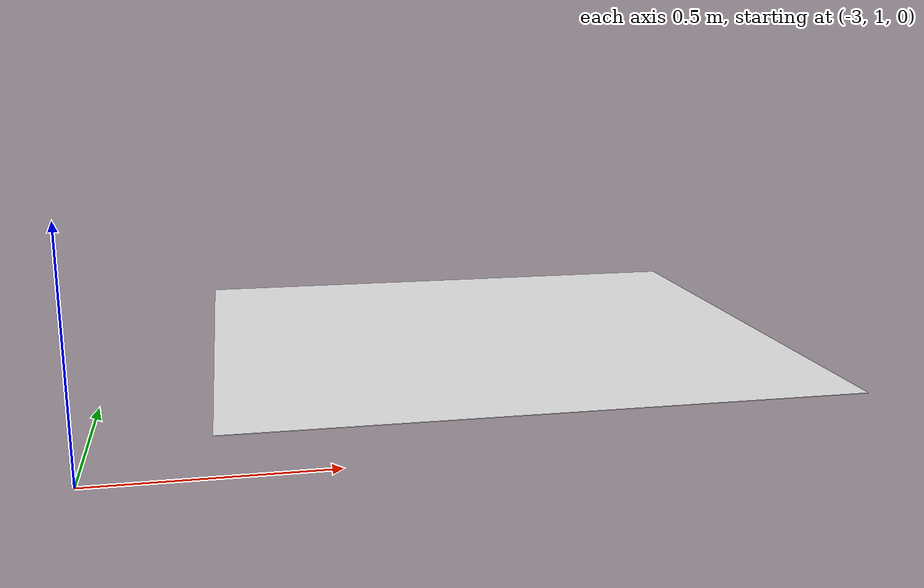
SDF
<?xml version="1.0" encoding="UTF-8"?>
<sdf version='1.9'>
  <model name='robonation_R'>
    <static>true</static>
    <pose>-2 2 0.001 0 0 0</pose>
    <link name='base'>
      <visual name='base_visual'>
        <geometry>
          <plane>
            <normal>0 0 1</normal>
            <size>1.5 1.5</size>
          </plane>
        </geometry>
        <material>
          <diffuse>1 1 1 1</diffuse>
          <specular>0.4 0.4 0.4 1</specular>
          <pbr>
            <metal>
              <albedo_map>model://robonation_R/robo_R.png</albedo_map>
            </metal>
          </pbr>
        </material>
      </visual>
    </link>
  </model>
</sdf>
